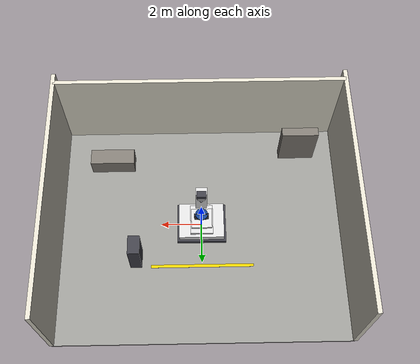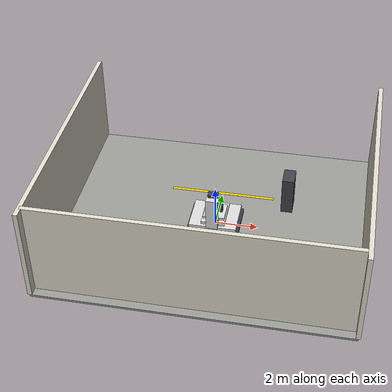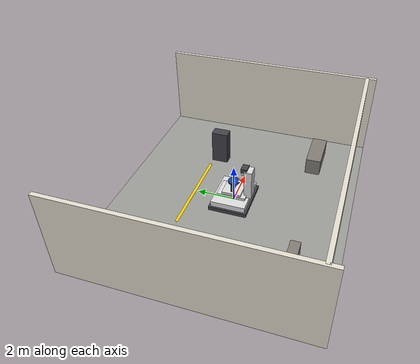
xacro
<?xml version="1.0"?>
<robot xmlns:xacro="http://www.ros.org/wiki/xacro" name="dmg_mori_5axis">

  <!-- MATERIAUX -->
  <material name="machine_body"><color rgba="0.85 0.85 0.85 1.0"/></material>
  <material name="machine_dark"><color rgba="0.25 0.25 0.28 1.0"/></material>
  <material name="table_blue"><color rgba="0.08 0.25 0.55 1.0"/></material>
  <material name="spindle_silver"><color rgba="0.75 0.75 0.78 1.0"/></material>
  <material name="tool_yellow"><color rgba="0.85 0.70 0.05 1.0"/></material>
  <material name="floor_concrete"><color rgba="0.60 0.60 0.58 1.0"/></material>
  <material name="wall_color"><color rgba="0.88 0.86 0.80 1.0"/></material>
  <material name="safety_yellow"><color rgba="0.95 0.80 0.00 1.0"/></material>
  <material name="rack_metal"><color rgba="0.50 0.48 0.45 1.0"/></material>

  <!-- MONDE -->
  <link name="world"/>

  <!-- SOL — fixe au monde avec collision solide -->
  <joint name="world_to_floor" type="fixed">
    <parent link="world"/>
    <child link="floor_link"/>
    <origin xyz="0 0 0" rpy="0 0 0"/>
  </joint>

  <link name="floor_link">
    <visual>
      <geometry><box size="14.0 12.0 0.10"/></geometry>
      <origin xyz="0 0 -0.05" rpy="0 0 0"/>
      <material name="floor_concrete"/>
    </visual>
    <collision>
      <geometry><box size="14.0 12.0 0.10"/></geometry>
      <origin xyz="0 0 -0.05" rpy="0 0 0"/>
    </collision>
    <inertial>
      <mass value="50000.0"/>
      <origin xyz="0 0 -0.05"/>
      <inertia ixx="10000" ixy="0" ixz="0"
               iyy="10000" iyz="0" izz="10000"/>
    </inertial>
  </link>

  <!-- MUR ARRIERE -->
  <joint name="wall_back_joint" type="fixed">
    <parent link="floor_link"/>
    <child link="wall_back"/>
    <origin xyz="0 -5.5 0" rpy="0 0 0"/>
  </joint>
  <link name="wall_back">
    <visual>
      <geometry><box size="14.0 0.20 4.5"/></geometry>
      <origin xyz="0 0 2.25" rpy="0 0 0"/>
      <material name="wall_color"/>
    </visual>
    <collision>
      <geometry><box size="14.0 0.20 4.5"/></geometry>
      <origin xyz="0 0 2.25" rpy="0 0 0"/>
    </collision>
    <inertial>
      <mass value="5000"/>
      <origin xyz="0 0 2.25"/>
      <inertia ixx="500" ixy="0" ixz="0"
               iyy="500" iyz="0" izz="500"/>
    </inertial>
  </link>

  <!-- MUR GAUCHE -->
  <joint name="wall_left_joint" type="fixed">
    <parent link="floor_link"/>
    <child link="wall_left"/>
    <origin xyz="-7.0 0 0" rpy="0 0 0"/>
  </joint>
  <link name="wall_left">
    <visual>
      <geometry><box size="0.20 12.0 4.5"/></geometry>
      <origin xyz="0 0 2.25" rpy="0 0 0"/>
      <material name="wall_color"/>
    </visual>
    <collision>
      <geometry><box size="0.20 12.0 4.5"/></geometry>
      <origin xyz="0 0 2.25" rpy="0 0 0"/>
    </collision>
    <inertial>
      <mass value="5000"/>
      <origin xyz="0 0 2.25"/>
      <inertia ixx="500" ixy="0" ixz="0"
               iyy="500" iyz="0" izz="500"/>
    </inertial>
  </link>

  <!-- MUR DROIT -->
  <joint name="wall_right_joint" type="fixed">
    <parent link="floor_link"/>
    <child link="wall_right"/>
    <origin xyz="7.0 0 0" rpy="0 0 0"/>
  </joint>
  <link name="wall_right">
    <visual>
      <geometry><box size="0.20 12.0 4.5"/></geometry>
      <origin xyz="0 0 2.25" rpy="0 0 0"/>
      <material name="wall_color"/>
    </visual>
    <collision>
      <geometry><box size="0.20 12.0 4.5"/></geometry>
      <origin xyz="0 0 2.25" rpy="0 0 0"/>
    </collision>
    <inertial>
      <mass value="5000"/>
      <origin xyz="0 0 2.25"/>
      <inertia ixx="500" ixy="0" ixz="0"
               iyy="500" iyz="0" izz="500"/>
    </inertial>
  </link>

  <!-- LIGNE SECURITE SOL -->
  <joint name="safety_line_joint" type="fixed">
    <parent link="floor_link"/>
    <child link="safety_line"/>
    <origin xyz="0 0 0" rpy="0 0 0"/>
  </joint>
  <link name="safety_line">
    <visual>
      <geometry><box size="5.0 0.15 0.002"/></geometry>
      <origin xyz="0 2.2 0.001" rpy="0 0 0"/>
      <material name="safety_yellow"/>
    </visual>
    <inertial>
      <mass value="1"/>
      <origin xyz="0 2.2 0.001"/>
      <inertia ixx="0.01" ixy="0" ixz="0"
               iyy="0.01" iyz="0" izz="0.01"/>
    </inertial>
  </link>

  <!-- ETABLI -->
  <joint name="workbench_joint" type="fixed">
    <parent link="floor_link"/>
    <child link="workbench"/>
    <origin xyz="4.5 -3.5 0" rpy="0 0 0"/>
  </joint>
  <link name="workbench">
    <visual>
      <geometry><box size="2.2 0.8 0.90"/></geometry>
      <origin xyz="0 0 0.45" rpy="0 0 0"/>
      <material name="rack_metal"/>
    </visual>
    <collision>
      <geometry><box size="2.2 0.8 0.90"/></geometry>
      <origin xyz="0 0 0.45" rpy="0 0 0"/>
    </collision>
    <inertial>
      <mass value="120"/>
      <origin xyz="0 0 0.45"/>
      <inertia ixx="15" ixy="0" ixz="0"
               iyy="15" iyz="0" izz="15"/>
    </inertial>
  </link>

  <!-- ETAGERE OUTILS -->
  <joint name="toolrack_joint" type="fixed">
    <parent link="floor_link"/>
    <child link="toolrack"/>
    <origin xyz="-5.0 -4.0 0" rpy="0 0 0"/>
  </joint>
  <link name="toolrack">
    <visual>
      <geometry><box size="1.8 0.45 2.2"/></geometry>
      <origin xyz="0 0 1.10" rpy="0 0 0"/>
      <material name="rack_metal"/>
    </visual>
    <collision>
      <geometry><box size="1.8 0.45 2.2"/></geometry>
      <origin xyz="0 0 1.10" rpy="0 0 0"/>
    </collision>
    <inertial>
      <mass value="80"/>
      <origin xyz="0 0 1.10"/>
      <inertia ixx="15" ixy="0" ixz="0"
               iyy="15" iyz="0" izz="15"/>
    </inertial>
  </link>

  <!-- ARMOIRE CNC -->
  <joint name="control_cabinet_joint" type="fixed">
    <parent link="floor_link"/>
    <child link="control_cabinet"/>
    <origin xyz="3.2 1.8 0" rpy="0 0 1.57"/>
  </joint>
  <link name="control_cabinet">
    <visual>
      <geometry><box size="0.90 0.55 1.85"/></geometry>
      <origin xyz="0 0 0.925" rpy="0 0 0"/>
      <material name="machine_dark"/>
    </visual>
    <collision>
      <geometry><box size="0.90 0.55 1.85"/></geometry>
      <origin xyz="0 0 0.925" rpy="0 0 0"/>
    </collision>
    <inertial>
      <mass value="200"/>
      <origin xyz="0 0 0.925"/>
      <inertia ixx="30" ixy="0" ixz="0"
               iyy="30" iyz="0" izz="30"/>
    </inertial>
  </link>

  <!-- Joint machine-sol : FIXED, la machine NE BOUGE PAS sur le sol -->
  <joint name="base_joint" type="fixed">
    <parent link="floor_link"/>
    <child link="base_link"/>
    <origin xyz="0 0 0" rpy="0 0 0"/>
  </joint>

  <!-- SOCLE BETON (fondation) — masse 3000 kg, z commence a 0 -->
  <link name="base_link">
    <visual>
      <geometry><box size="2.40 2.00 0.20"/></geometry>
      <origin xyz="0 0 0.10" rpy="0 0 0"/>
      <material name="machine_dark"/>
    </visual>
    <collision>
      <geometry><box size="2.40 2.00 0.20"/></geometry>
      <origin xyz="0 0 0.10" rpy="0 0 0"/>
    </collision>
    <inertial>
      <mass value="3000.0"/>
      <origin xyz="0 0 0.10"/>
      <inertia ixx="800" ixy="0" ixz="0"
               iyy="800" iyz="0" izz="800"/>
    </inertial>
  </link>

  <!-- CORPS PRINCIPAL — masse 5000 kg -->
  <joint name="body_joint" type="fixed">
    <parent link="base_link"/>
    <child link="machine_body_link"/>
    <origin xyz="0 0 0.20" rpy="0 0 0"/>
  </joint>
  <link name="machine_body_link">
    <visual>
      <geometry><box size="2.20 1.80 0.30"/></geometry>
      <origin xyz="0 0 0.15" rpy="0 0 0"/>
      <material name="machine_body"/>
    </visual>
    <collision>
      <geometry><box size="2.20 1.80 0.30"/></geometry>
      <origin xyz="0 0 0.15" rpy="0 0 0"/>
    </collision>
    <inertial>
      <mass value="5000.0"/>
      <origin xyz="0 0 0.15"/>
      <inertia ixx="1200" ixy="0" ixz="0"
               iyy="1200" iyz="0" izz="1200"/>
    </inertial>
  </link>

  <joint name="joint_x" type="prismatic">
    <parent link="machine_body_link"/>
    <child link="link_x"/>
    <origin xyz="0 0 0.30" rpy="0 0 0"/>
    <axis xyz="1 0 0"/>
    <limit lower="-0.450" upper="0.450"
           effort="12000" velocity="1.0"/>
    <dynamics damping="500" friction="200"/>
  </joint>

  <link name="link_x">
    <visual>
      <geometry><box size="1.10 1.50 0.14"/></geometry>
      <origin xyz="0 0 0.07" rpy="0 0 0"/>
      <material name="machine_body"/>
    </visual>
    <collision>
      <geometry><box size="1.10 1.50 0.14"/></geometry>
      <origin xyz="0 0 0.07" rpy="0 0 0"/>
    </collision>
    <inertial>
      <mass value="800.0"/>
      <origin xyz="0 0 0.07"/>
      <!-- I = m*(a²+b²)/12 -->
      <inertia ixx="156" ixy="0" ixz="0"
               iyy="83"  iyz="0" izz="221"/>
    </inertial>
  </link>

  <joint name="joint_y" type="prismatic">
    <parent link="link_x"/>
    <child link="link_y"/>
    <origin xyz="0 0 0.14" rpy="0 0 0"/>
    <axis xyz="0 1 0"/>
    <limit lower="-0.350" upper="0.350"
           effort="10000" velocity="1.0"/>
    <dynamics damping="400" friction="150"/>
  </joint>

  <link name="link_y">
    <visual>
      <geometry><box size="1.00 1.00 0.12"/></geometry>
      <origin xyz="0 0 0.06" rpy="0 0 0"/>
      <material name="machine_body"/>
    </visual>
    <collision>
      <geometry><box size="1.00 1.00 0.12"/></geometry>
      <origin xyz="0 0 0.06" rpy="0 0 0"/>
    </collision>
    <inertial>
      <mass value="500.0"/>
      <origin xyz="0 0 0.06"/>
      <inertia ixx="83"  ixy="0" ixz="0"
               iyy="83"  iyz="0" izz="167"/>
    </inertial>
  </link>

  <joint name="joint_a" type="revolute">
    <parent link="link_y"/>
    <child link="link_a"/>
    <origin xyz="0 0 0.12" rpy="0 0 0"/>
    <axis xyz="1 0 0"/>
    <limit lower="-1.920" upper="0.524"
           effort="1800" velocity="0.523"/>
    <dynamics damping="80" friction="30"/>
  </joint>

  <!-- Berceau en U -->
  <link name="link_a">
    <visual>
      <geometry><box size="0.70 0.14 0.40"/></geometry>
      <origin xyz="0 0 0.20" rpy="0 0 0"/>
      <material name="machine_dark"/>
    </visual>
    <collision>
      <geometry><box size="0.70 0.14 0.40"/></geometry>
      <origin xyz="0 0 0.20" rpy="0 0 0"/>
    </collision>
    <inertial>
      <mass value="300.0"/>
      <origin xyz="0 0 0.20"/>
      <inertia ixx="8.5" ixy="0" ixz="0"
               iyy="13.4" iyz="0" izz="13.4"/>
    </inertial>
  </link>

  <joint name="joint_c" type="continuous">
    <parent link="link_a"/>
    <child link="link_c"/>
    <origin xyz="0 0 0.40" rpy="0 0 0"/>
    <axis xyz="0 0 1"/>
    <limit effort="800" velocity="10.47"/>
    <dynamics damping="40" friction="15"/>
  </joint>

  <!-- Plateau tournant avec rainures en T -->
  <link name="link_c">
    <visual>
      <geometry><cylinder radius="0.300" length="0.07"/></geometry>
      <origin xyz="0 0 0.035" rpy="0 0 0"/>
      <material name="table_blue"/>
    </visual>
    <collision>
      <geometry><cylinder radius="0.300" length="0.07"/></geometry>
      <origin xyz="0 0 0.035" rpy="0 0 0"/>
    </collision>
    <inertial>
      <mass value="150.0"/>
      <origin xyz="0 0 0.035"/>
      <!-- I cylindre = 0.5*m*r² -->
      <inertia ixx="3.56" ixy="0" ixz="0"
               iyy="3.56" iyz="0" izz="6.75"/>
    </inertial>
  </link>

  <!-- Rainure T sur plateau -->
  <joint name="tslot1_joint" type="fixed">
    <parent link="link_c"/>
    <child link="tslot1"/>
    <origin xyz="0 0 0.07" rpy="0 0 0"/>
  </joint>
  <link name="tslot1">
    <visual>
      <geometry><box size="0.52 0.04 0.012"/></geometry>
      <origin xyz="0 0 0.006" rpy="0 0 0"/>
      <material name="machine_dark"/>
    </visual>
    <inertial>
      <mass value="2"/>
      <origin xyz="0 0 0.006"/>
      <inertia ixx="0.01" ixy="0" ixz="0"
               iyy="0.01" iyz="0" izz="0.01"/>
    </inertial>
  </link>

  <!-- =====================================================
       COLONNE VERTICALE — masse 4000 kg
       Montee sur le cote arriere du bati
  ===================================================== -->
  <joint name="column_joint" type="fixed">
    <parent link="machine_body_link"/>
    <child link="column_link"/>
    <origin xyz="0 -0.80 0.30" rpy="0 0 0"/>
  </joint>

  <link name="column_link">
    <visual>
      <geometry><box size="0.55 0.40 1.60"/></geometry>
      <origin xyz="0 0 0.80" rpy="0 0 0"/>
      <material name="machine_body"/>
    </visual>
    <collision>
      <geometry><box size="0.55 0.40 1.60"/></geometry>
      <origin xyz="0 0 0.80" rpy="0 0 0"/>
    </collision>
    <inertial>
      <mass value="4000.0"/>
      <origin xyz="0 0 0.80"/>
      <inertia ixx="800" ixy="0" ixz="0"
               iyy="800" iyz="0" izz="200"/>
    </inertial>
  </link>

  <!-- Traverse horizontale -->
  <joint name="crossbeam_joint" type="fixed">
    <parent link="column_link"/>
    <child link="crossbeam_link"/>
    <origin xyz="0 0.22 1.50" rpy="0 0 0"/>
  </joint>
  <link name="crossbeam_link">
    <visual>
      <geometry><box size="0.45 0.32 0.22"/></geometry>
      <origin xyz="0 0 0.11" rpy="0 0 0"/>
      <material name="machine_dark"/>
    </visual>
    <collision>
      <geometry><box size="0.45 0.32 0.22"/></geometry>
      <origin xyz="0 0 0.11" rpy="0 0 0"/>
    </collision>
    <inertial>
      <mass value="200"/>
      <origin xyz="0 0 0.11"/>
      <inertia ixx="8" ixy="0" ixz="0"
               iyy="8" iyz="0" izz="8"/>
    </inertial>
  </link>

  <joint name="joint_z" type="prismatic">
    <parent link="column_link"/>
    <child link="link_z"/>
    <origin xyz="0 0.22 1.50" rpy="0 0 0"/>
    <axis xyz="0 0 -1"/>
    <limit lower="0.0" upper="0.700"
           effort="15000" velocity="1.0"/>
    <!-- Amortissement eleve : contre la gravite -->
    <dynamics damping="800" friction="300"/>
  </joint>

  <link name="link_z">
    <visual>
      <geometry><box size="0.38 0.30 0.32"/></geometry>
      <origin xyz="0 0 0" rpy="0 0 0"/>
      <material name="machine_body"/>
    </visual>
    <collision>
      <geometry><box size="0.38 0.30 0.32"/></geometry>
      <origin xyz="0 0 0" rpy="0 0 0"/>
    </collision>
    <inertial>
      <mass value="400.0"/>
      <origin xyz="0 0 0"/>
      <inertia ixx="14.9" ixy="0" ixz="0"
               iyy="14.9" iyz="0" izz="18.3"/>
    </inertial>
  </link>

  <!-- =====================================================
       BROCHE PRINCIPALE — masse 120 kg
       Vitesse max reelle : 18000 tr/min
  ===================================================== -->
  <joint name="spindle_joint" type="fixed">
    <parent link="link_z"/>
    <child link="spindle_link"/>
    <origin xyz="0 0 -0.25" rpy="0 0 0"/>
  </joint>

  <link name="spindle_link">
    <visual>
      <geometry><cylinder radius="0.075" length="0.25"/></geometry>
      <origin xyz="0 0 -0.125" rpy="0 0 0"/>
      <material name="spindle_silver"/>
    </visual>
    <collision>
      <geometry><cylinder radius="0.075" length="0.25"/></geometry>
      <origin xyz="0 0 -0.125" rpy="0 0 0"/>
    </collision>
    <inertial>
      <mass value="120.0"/>
      <origin xyz="0 0 -0.125"/>
      <!-- I cylindre creux approx -->
      <inertia ixx="0.72" ixy="0" ixz="0"
               iyy="0.72" iyz="0" izz="0.34"/>
    </inertial>
  </link>

  <!-- CONE PORTE-OUTIL HSK-A63 -->
  <joint name="toolholder_joint" type="fixed">
    <parent link="spindle_link"/>
    <child link="toolholder_link"/>
    <origin xyz="0 0 -0.25" rpy="0 0 0"/>
  </joint>
  <link name="toolholder_link">
    <visual>
      <geometry><cylinder radius="0.042" length="0.09"/></geometry>
      <origin xyz="0 0 -0.045" rpy="0 0 0"/>
      <material name="machine_dark"/>
    </visual>
    <collision>
      <geometry><cylinder radius="0.042" length="0.09"/></geometry>
      <origin xyz="0 0 -0.045" rpy="0 0 0"/>
    </collision>
    <inertial>
      <mass value="8.0"/>
      <origin xyz="0 0 -0.045"/>
      <inertia ixx="0.02" ixy="0" ixz="0"
               iyy="0.02" iyz="0" izz="0.01"/>
    </inertial>
  </link>

  <!-- FRAISE D16 — masse 0.4 kg -->
  <joint name="tool_joint" type="fixed">
    <parent link="toolholder_link"/>
    <child link="tool_link"/>
    <origin xyz="0 0 -0.09" rpy="0 0 0"/>
  </joint>
  <link name="tool_link">
    <visual>
      <geometry><cylinder radius="0.008" length="0.10"/></geometry>
      <origin xyz="0 0 -0.05" rpy="0 0 0"/>
      <material name="tool_yellow"/>
    </visual>
    <collision>
      <geometry><cylinder radius="0.008" length="0.10"/></geometry>
      <origin xyz="0 0 -0.05" rpy="0 0 0"/>
    </collision>
    <inertial>
      <mass value="0.4"/>
      <origin xyz="0 0 -0.05"/>
      <inertia ixx="0.0003" ixy="0" ixz="0"
               iyy="0.0003" iyz="0" izz="0.0001"/>
    </inertial>
  </link>

</robot>
